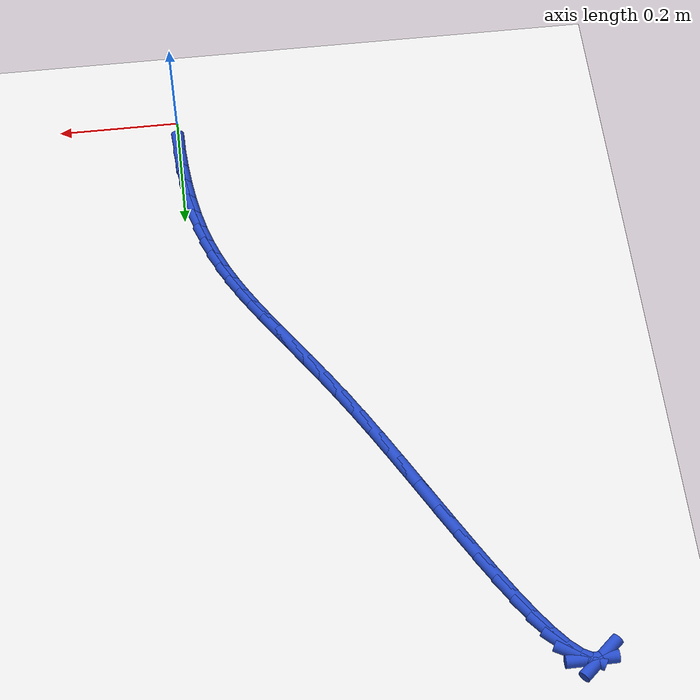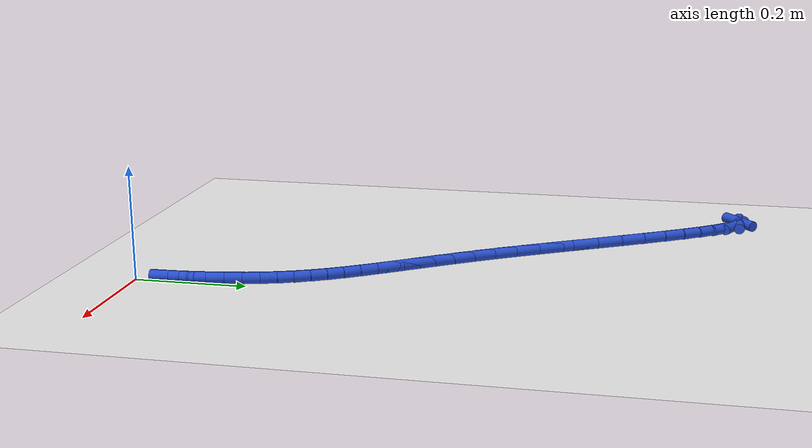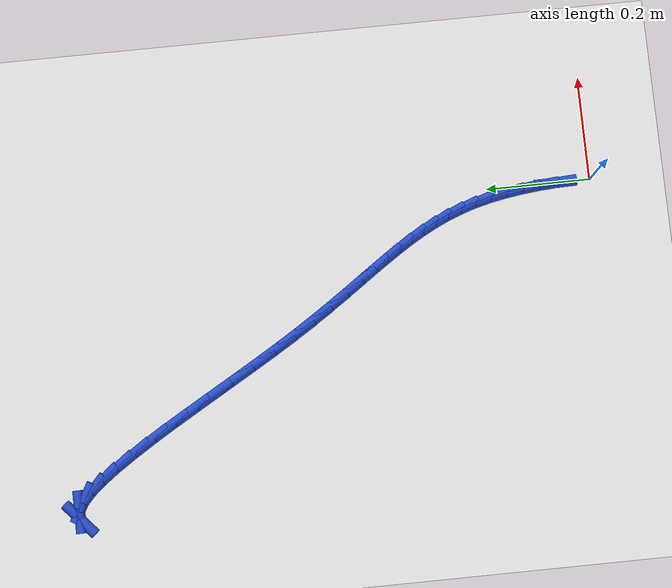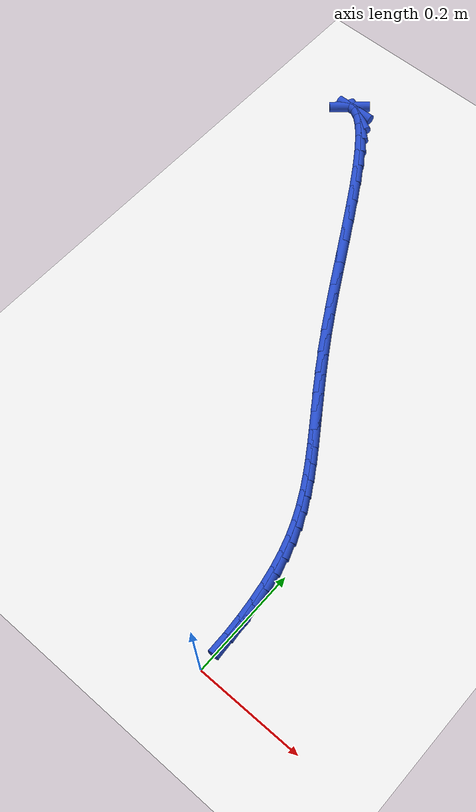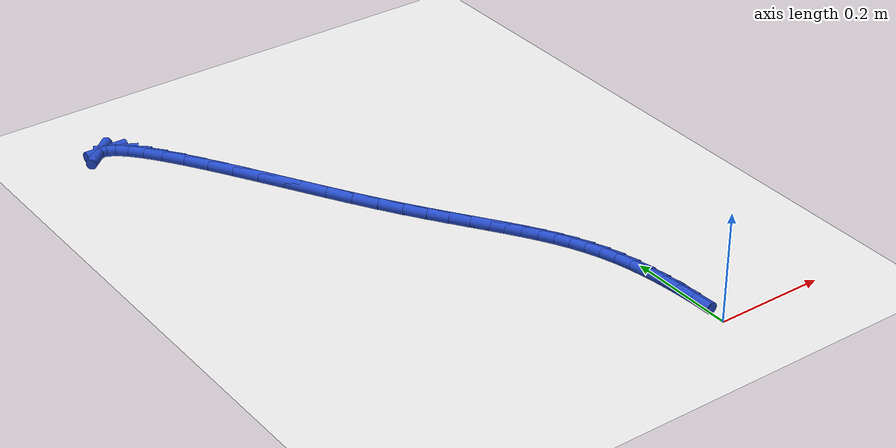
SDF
<sdf version="1.6">
 <world name="default">
  <model name="ground_plane">
   <static>1</static>
   <link name="link">
    <collision name="collision">
     <geometry><plane><normal>0 0 1</normal><size>100 100</size></plane></geometry>
     <surface><friction><ode><mu>100</mu><mu2>50</mu2></ode></friction></surface>
    </collision>
    <visual name="visual">
     <cast_shadows>0</cast_shadows>
     <geometry><plane><normal>0 0 1</normal><size>100 100</size></plane></geometry>
     <material>
      <script><uri>file://media/materials/scripts/gazebo.material</uri><name>Gazebo/WhiteGlow</name></script>
     </material>
    </visual>
   </link>
  </model>
  <model name="line">
   <link name="link_2">
    <pose>-0.0015030384420562893 0.06751203752814953 0.01 0 1.57 -1.4996828587393176</pose>
    <collision name="collision">
     <geometry><cylinder><radius>0.01</radius><length>0.08</length></cylinder></geometry>
    </collision>
    <visual name="visual">
     <material>
      <script><name>Gazebo/Blue</name><uri>file://media/materials/scripts/gazebo.material</uri></script>
     </material>
     <geometry><cylinder><radius>0.01</radius><length>0.08</length></cylinder></geometry>
    </visual>
   </link>
   <link name="link_3">
    <pose>-0.0038960851850645636 0.10110639691667171 0.01 0 1.57 -1.4630347684916494</pose>
    <collision name="collision">
     <geometry><cylinder><radius>0.01</radius><length>0.08</length></cylinder></geometry>
    </collision>
    <visual name="visual">
     <material>
      <script><name>Gazebo/Blue</name><uri>file://media/materials/scripts/gazebo.material</uri></script>
     </material>
     <geometry><cylinder><radius>0.01</radius><length>0.08</length></cylinder></geometry>
    </visual>
   </link>
   <link name="link_4">
    <pose>-0.007475234556092558 0.1341913330961766 0.01 0 1.57 -1.4221208098039462</pose>
    <collision name="collision">
     <geometry><cylinder><radius>0.01</radius><length>0.08</length></cylinder></geometry>
    </collision>
    <visual name="visual">
     <material>
      <script><name>Gazebo/Blue</name><uri>file://media/materials/scripts/gazebo.material</uri></script>
     </material>
     <geometry><cylinder><radius>0.01</radius><length>0.08</length></cylinder></geometry>
    </visual>
   </link>
   <link name="link_5">
    <pose>-0.012309299765165012 0.1664656083476777 0.01 0 1.57 -1.3757061654834393</pose>
    <collision name="collision">
     <geometry><cylinder><radius>0.01</radius><length>0.08</length></cylinder></geometry>
    </collision>
    <visual name="visual">
     <material>
      <script><name>Gazebo/Blue</name><uri>file://media/materials/scripts/gazebo.material</uri></script>
     </material>
     <geometry><cylinder><radius>0.01</radius><length>0.08</length></cylinder></geometry>
    </visual>
   </link>
   <link name="link_6">
    <pose>-0.018467094022306653 0.1976279849521883 0.01 0 1.57 -1.3222450555763587</pose>
    <collision name="collision">
     <geometry><cylinder><radius>0.01</radius><length>0.08</length></cylinder></geometry>
    </collision>
    <visual name="visual">
     <material>
      <script><name>Gazebo/Blue</name><uri>file://media/materials/scripts/gazebo.material</uri></script>
     </material>
     <geometry><cylinder><radius>0.01</radius><length>0.08</length></cylinder></geometry>
    </visual>
   </link>
   <link name="link_7">
    <pose>-0.02601743053754222 0.2273772251907219 0.01 0 1.57 -1.2610309015368804</pose>
    <collision name="collision">
     <geometry><cylinder><radius>0.01</radius><length>0.08</length></cylinder></geometry>
    </collision>
    <visual name="visual">
     <material>
      <script><name>Gazebo/Blue</name><uri>file://media/materials/scripts/gazebo.material</uri></script>
     </material>
     <geometry><cylinder><radius>0.01</radius><length>0.08</length></cylinder></geometry>
    </visual>
   </link>
   <link name="link_8">
    <pose>-0.03501566513942105 0.25549065689504324 0.01 0 1.57 -1.1984716243927567</pose>
    <collision name="collision">
     <geometry><cylinder><radius>0.01</radius><length>0.08</length></cylinder></geometry>
    </collision>
    <visual name="visual">
     <material>
      <script><name>Gazebo/Blue</name><uri>file://media/materials/scripts/gazebo.material</uri></script>
     </material>
     <geometry><cylinder><radius>0.01</radius><length>0.08</length></cylinder></geometry>
    </visual>
   </link>
   <link name="link_9">
    <pose>-0.04544158082113257 0.28218680973419524 0.01 0 1.57 -1.1394189568886843</pose>
    <collision name="collision">
     <geometry><cylinder><radius>0.01</radius><length>0.08</length></cylinder></geometry>
    </collision>
    <visual name="visual">
     <material>
      <script><name>Gazebo/Blue</name><uri>file://media/materials/scripts/gazebo.material</uri></script>
     </material>
     <geometry><cylinder><radius>0.01</radius><length>0.08</length></cylinder></geometry>
    </visual>
   </link>
   <link name="link_10">
    <pose>-0.05724859883860157 0.3078381158589735 0.01 0 1.57 -1.0864862673311666</pose>
    <collision name="collision">
     <geometry><cylinder><radius>0.01</radius><length>0.08</length></cylinder></geometry>
    </collision>
    <visual name="visual">
     <material>
      <script><name>Gazebo/Blue</name><uri>file://media/materials/scripts/gazebo.material</uri></script>
     </material>
     <geometry><cylinder><radius>0.01</radius><length>0.08</length></cylinder></geometry>
    </visual>
   </link>
   <link name="link_11">
    <pose>-0.07039011322149369 0.332817166369822 0.01 0 1.57 -1.041721886535463</pose>
    <collision name="collision">
     <geometry><cylinder><radius>0.01</radius><length>0.08</length></cylinder></geometry>
    </collision>
    <visual name="visual">
     <material>
      <script><name>Gazebo/Blue</name><uri>file://media/materials/scripts/gazebo.material</uri></script>
     </material>
     <geometry><cylinder><radius>0.01</radius><length>0.08</length></cylinder></geometry>
    </visual>
   </link>
   <link name="link_12">
    <pose>-0.08481951799947454 0.3574965523671844 0.01 0 1.57 -1.0063934821426175</pose>
    <collision name="collision">
     <geometry><cylinder><radius>0.01</radius><length>0.08</length></cylinder></geometry>
    </collision>
    <visual name="visual">
     <material>
      <script><name>Gazebo/Blue</name><uri>file://media/materials/scripts/gazebo.material</uri></script>
     </material>
     <geometry><cylinder><radius>0.01</radius><length>0.08</length></cylinder></geometry>
    </visual>
   </link>
   <link name="link_13">
    <pose>-0.10049020720220972 0.38224886495150434 0.01 0 1.57 -0.980960257687894</pose>
    <collision name="collision">
     <geometry><cylinder><radius>0.01</radius><length>0.08</length></cylinder></geometry>
    </collision>
    <visual name="visual">
     <material>
      <script><name>Gazebo/Blue</name><uri>file://media/materials/scripts/gazebo.material</uri></script>
     </material>
     <geometry><cylinder><radius>0.01</radius><length>0.08</length></cylinder></geometry>
    </visual>
   </link>
   <link name="link_14">
    <pose>-0.11735557485936489 0.40744669522322585 0.01 0 1.57 -0.9651891636108009</pose>
    <collision name="collision">
     <geometry><cylinder><radius>0.01</radius><length>0.08</length></cylinder></geometry>
    </collision>
    <visual name="visual">
     <material>
      <script><name>Gazebo/Blue</name><uri>file://media/materials/scripts/gazebo.material</uri></script>
     </material>
     <geometry><cylinder><radius>0.01</radius><length>0.08</length></cylinder></geometry>
    </visual>
   </link>
   <link name="link_15">
    <pose>-0.1353690150006056 0.43346263428279236 0.01 0 1.57 -0.9583392861030646</pose>
    <collision name="collision">
     <geometry><cylinder><radius>0.01</radius><length>0.08</length></cylinder></geometry>
    </collision>
    <visual name="visual">
     <material>
      <script><name>Gazebo/Blue</name><uri>file://media/materials/scripts/gazebo.material</uri></script>
     </material>
     <geometry><cylinder><radius>0.01</radius><length>0.08</length></cylinder></geometry>
    </visual>
   </link>
   <link name="link_16">
    <pose>-0.15448392165559754 0.46066927323064777 0.01 0 1.57 -0.959351847053833</pose>
    <collision name="collision">
     <geometry><cylinder><radius>0.01</radius><length>0.08</length></cylinder></geometry>
    </collision>
    <visual name="visual">
     <material>
      <script><name>Gazebo/Blue</name><uri>file://media/materials/scripts/gazebo.material</uri></script>
     </material>
     <geometry><cylinder><radius>0.01</radius><length>0.08</length></cylinder></geometry>
    </visual>
   </link>
   <link name="link_17">
    <pose>-0.17465368885400634 0.4894392031672359 0.01 0 1.57 -0.9670116891092768</pose>
    <collision name="collision">
     <geometry><cylinder><radius>0.01</radius><length>0.08</length></cylinder></geometry>
    </collision>
    <visual name="visual">
     <material>
      <script><name>Gazebo/Blue</name><uri>file://media/materials/scripts/gazebo.material</uri></script>
     </material>
     <geometry><cylinder><radius>0.01</radius><length>0.08</length></cylinder></geometry>
    </visual>
   </link>
   <link name="link_18">
    <pose>-0.19583171062549742 0.520145015193 0.01 0 1.57 -0.980069513488421</pose>
    <collision name="collision">
     <geometry><cylinder><radius>0.01</radius><length>0.08</length></cylinder></geometry>
    </collision>
    <visual name="visual">
     <material>
      <script><name>Gazebo/Blue</name><uri>file://media/materials/scripts/gazebo.material</uri></script>
     </material>
     <geometry><cylinder><radius>0.01</radius><length>0.08</length></cylinder></geometry>
    </visual>
   </link>
   <link name="link_19">
    <pose>-0.21797138099973667 0.5531593004083847 0.01 0 1.57 -0.9973268107151732</pose>
    <collision name="collision">
     <geometry><cylinder><radius>0.01</radius><length>0.08</length></cylinder></geometry>
    </collision>
    <visual name="visual">
     <material>
      <script><name>Gazebo/Blue</name><uri>file://media/materials/scripts/gazebo.material</uri></script>
     </material>
     <geometry><cylinder><radius>0.01</radius><length>0.08</length></cylinder></geometry>
    </visual>
   </link>
   <link name="link_20">
    <pose>-0.24102609400638947 0.5888546499138331 0.01 0 1.57 -1.0170251952043114</pose>
    <collision name="collision">
     <geometry><cylinder><radius>0.01</radius><length>0.08</length></cylinder></geometry>
    </collision>
    <visual name="visual">
     <material>
      <script><name>Gazebo/Blue</name><uri>file://media/materials/scripts/gazebo.material</uri></script>
     </material>
     <geometry><cylinder><radius>0.01</radius><length>0.08</length></cylinder></geometry>
    </visual>
   </link>
   <link name="link_21">
    <pose>-0.264937218835737 0.6275266449607853 0.01 0 1.57 -1.0324751283271645</pose>
    <collision name="collision">
     <geometry><cylinder><radius>0.01</radius><length>0.08</length></cylinder></geometry>
    </collision>
    <visual name="visual">
     <material>
      <script><name>Gazebo/Blue</name><uri>file://media/materials/scripts/gazebo.material</uri></script>
     </material>
     <geometry><cylinder><radius>0.01</radius><length>0.08</length></cylinder></geometry>
    </visual>
   </link>
   <link name="link_22">
    <pose>-0.2895264194555888 0.6687042469055947 0.01 0 1.57 -1.0415076142069588</pose>
    <collision name="collision">
     <geometry><cylinder><radius>0.01</radius><length>0.08</length></cylinder></geometry>
    </collision>
    <visual name="visual">
     <material>
      <script><name>Gazebo/Blue</name><uri>file://media/materials/scripts/gazebo.material</uri></script>
     </material>
     <geometry><cylinder><radius>0.01</radius><length>0.08</length></cylinder></geometry>
    </visual>
   </link>
   <link name="link_23">
    <pose>-0.3145467077563362 0.7114767533430729 0.01 0 1.57 -1.045183147144786</pose>
    <collision name="collision">
     <geometry><cylinder><radius>0.01</radius><length>0.08</length></cylinder></geometry>
    </collision>
    <visual name="visual">
     <material>
      <script><name>Gazebo/Blue</name><uri>file://media/materials/scripts/gazebo.material</uri></script>
     </material>
     <geometry><cylinder><radius>0.01</radius><length>0.08</length></cylinder></geometry>
    </visual>
   </link>
   <link name="link_24">
    <pose>-0.3397502816486447 0.7549282489538472 0.01 0 1.57 -1.043921646903295</pose>
    <collision name="collision">
     <geometry><cylinder><radius>0.01</radius><length>0.08</length></cylinder></geometry>
    </collision>
    <visual name="visual">
     <material>
      <script><name>Gazebo/Blue</name><uri>file://media/materials/scripts/gazebo.material</uri></script>
     </material>
     <geometry><cylinder><radius>0.01</radius><length>0.08</length></cylinder></geometry>
    </visual>
   </link>
   <link name="link_25">
    <pose>-0.364889339043179 0.7981428184185431 0.01 0 1.57 -1.0375802490978816</pose>
    <collision name="collision">
     <geometry><cylinder><radius>0.01</radius><length>0.08</length></cylinder></geometry>
    </collision>
    <visual name="visual">
     <material>
      <script><name>Gazebo/Blue</name><uri>file://media/materials/scripts/gazebo.material</uri></script>
     </material>
     <geometry><cylinder><radius>0.01</radius><length>0.08</length></cylinder></geometry>
    </visual>
   </link>
   <link name="link_26">
    <pose>-0.3897160778506043 0.8402045464177872 0.01 0 1.57 -1.0254122331068831</pose>
    <collision name="collision">
     <geometry><cylinder><radius>0.01</radius><length>0.08</length></cylinder></geometry>
    </collision>
    <visual name="visual">
     <material>
      <script><name>Gazebo/Blue</name><uri>file://media/materials/scripts/gazebo.material</uri></script>
     </material>
     <geometry><cylinder><radius>0.01</radius><length>0.08</length></cylinder></geometry>
    </visual>
   </link>
   <link name="link_27">
    <pose>-0.41398269598158627 0.8801975176322065 0.01 0 1.57 -1.0058392777826617</pose>
    <collision name="collision">
     <geometry><cylinder><radius>0.01</radius><length>0.08</length></cylinder></geometry>
    </collision>
    <visual name="visual">
     <material>
      <script><name>Gazebo/Blue</name><uri>file://media/materials/scripts/gazebo.material</uri></script>
     </material>
     <geometry><cylinder><radius>0.01</radius><length>0.08</length></cylinder></geometry>
    </visual>
   </link>
   <link name="link_28">
    <pose>-0.4374413913467897 0.9172058167424274 0.01 0 1.57 -0.9759007877650887</pose>
    <collision name="collision">
     <geometry><cylinder><radius>0.01</radius><length>0.08</length></cylinder></geometry>
    </collision>
    <visual name="visual">
     <material>
      <script><name>Gazebo/Blue</name><uri>file://media/materials/scripts/gazebo.material</uri></script>
     </material>
     <geometry><cylinder><radius>0.01</radius><length>0.08</length></cylinder></geometry>
    </visual>
   </link>
   <link name="link_29">
    <pose>-0.4598443618568799 0.9503135284290759 0.01 0 1.57 -0.9299918227641704</pose>
    <collision name="collision">
     <geometry><cylinder><radius>0.01</radius><length>0.08</length></cylinder></geometry>
    </collision>
    <visual name="visual">
     <material>
      <script><name>Gazebo/Blue</name><uri>file://media/materials/scripts/gazebo.material</uri></script>
     </material>
     <geometry><cylinder><radius>0.01</radius><length>0.08</length></cylinder></geometry>
    </visual>
   </link>
   <link name="link_30">
    <pose>-0.4809438054225219 0.9786047373727785 0.01 0 1.57 -0.8567774643884406</pose>
    <collision name="collision">
     <geometry><cylinder><radius>0.01</radius><length>0.08</length></cylinder></geometry>
    </collision>
    <visual name="visual">
     <material>
      <script><name>Gazebo/Blue</name><uri>file://media/materials/scripts/gazebo.material</uri></script>
     </material>
     <geometry><cylinder><radius>0.01</radius><length>0.08</length></cylinder></geometry>
    </visual>
   </link>
   <link name="link_31">
    <pose>-0.500491919954381 1.0011635282541622 0.01 0 1.57 -0.7308309836425345</pose>
    <collision name="collision">
     <geometry><cylinder><radius>0.01</radius><length>0.08</length></cylinder></geometry>
    </collision>
    <visual name="visual">
     <material>
      <script><name>Gazebo/Blue</name><uri>file://media/materials/scripts/gazebo.material</uri></script>
     </material>
     <geometry><cylinder><radius>0.01</radius><length>0.08</length></cylinder></geometry>
    </visual>
   </link>
   <link name="link_32">
    <pose>-0.5182409033631223 1.0170739857538527 0.01 0 1.57 -0.4885571650840036</pose>
    <collision name="collision">
     <geometry><cylinder><radius>0.01</radius><length>0.08</length></cylinder></geometry>
    </collision>
    <visual name="visual">
     <material>
      <script><name>Gazebo/Blue</name><uri>file://media/materials/scripts/gazebo.material</uri></script>
     </material>
     <geometry><cylinder><radius>0.01</radius><length>0.08</length></cylinder></geometry>
    </visual>
   </link>
   <link name="link_33">
    <pose>-0.5339429535594112 1.0254201945524772 0.01 0 1.57 0.009990871834794399</pose>
    <collision name="collision">
     <geometry><cylinder><radius>0.01</radius><length>0.08</length></cylinder></geometry>
    </collision>
    <visual name="visual">
     <material>
      <script><name>Gazebo/Blue</name><uri>file://media/materials/scripts/gazebo.material</uri></script>
     </material>
     <geometry><cylinder><radius>0.01</radius><length>0.08</length></cylinder></geometry>
    </visual>
   </link>
   <link name="link_34">
    <pose>-0.5473502684539124 1.0252862393306619 0.01 0 1.57 0.7200461406600918</pose>
    <collision name="collision">
     <geometry><cylinder><radius>0.01</radius><length>0.08</length></cylinder></geometry>
    </collision>
    <visual name="visual">
     <material>
      <script><name>Gazebo/Blue</name><uri>file://media/materials/scripts/gazebo.material</uri></script>
     </material>
     <geometry><cylinder><radius>0.01</radius><length>0.08</length></cylinder></geometry>
    </visual>
   </link>
   <link name="link_272">
    <pose>-0.001406209552560874 0.06795554106577788 0.01 0 1.57 -1.5501061981109554</pose>
    <collision name="collision">
     <geometry><cylinder><radius>0.01</radius><length>0.08</length></cylinder></geometry>
    </collision>
    <visual name="visual">
     <material>
      <script><name>Gazebo/Blue</name><uri>file://media/materials/scripts/gazebo.material</uri></script>
     </material>
     <geometry><cylinder><radius>0.01</radius><length>0.08</length></cylinder></geometry>
    </visual>
   </link>
  </model>
 </world>
</sdf>
